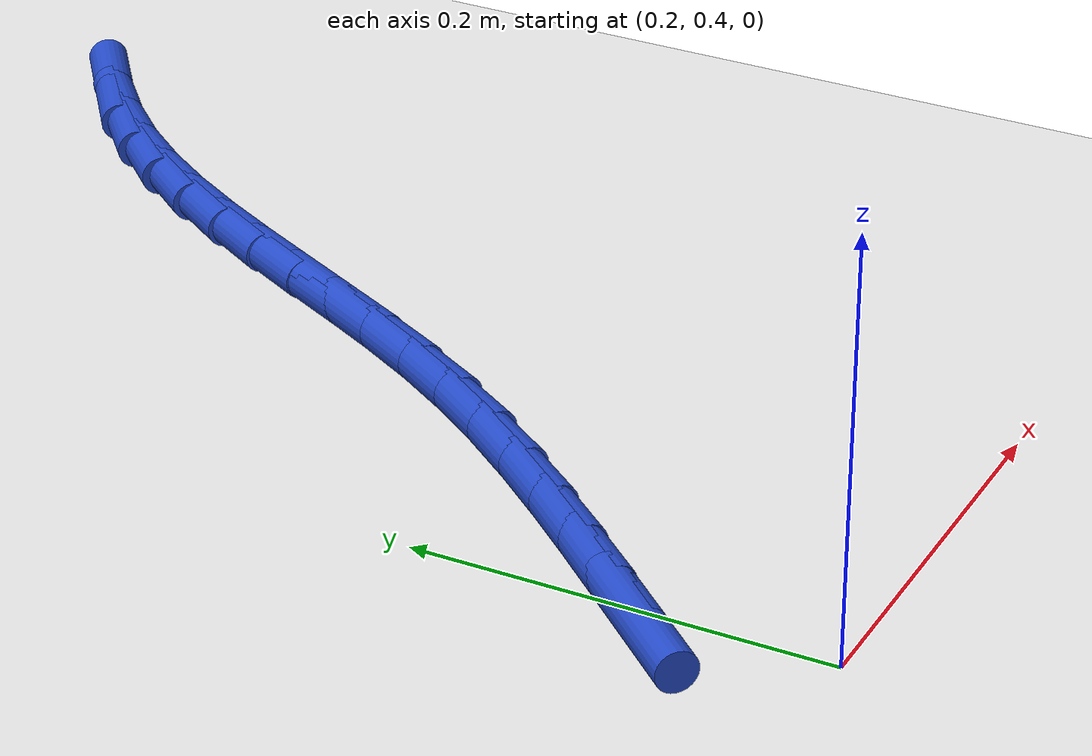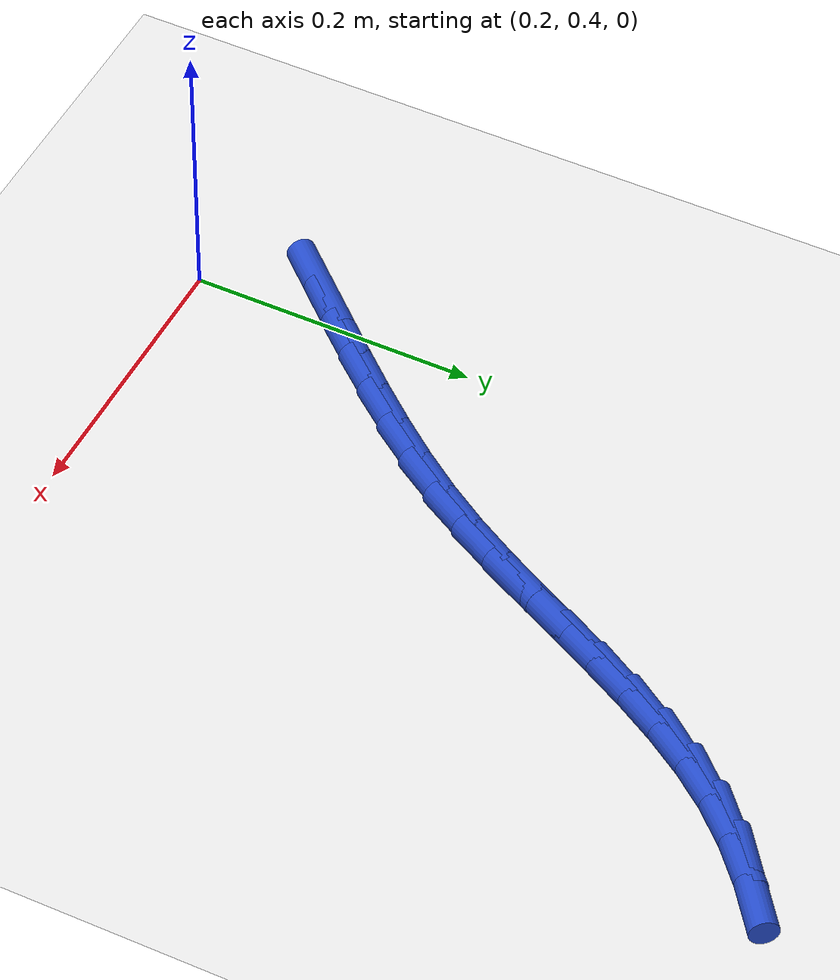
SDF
<sdf version="1.6">
 <world name="default">
  <model name="ground_plane">
   <static>1</static>
   <link name="link">
    <collision name="collision">
     <geometry><plane><normal>0 0 1</normal><size>100 100</size></plane></geometry>
     <surface><friction><ode><mu>100</mu><mu2>50</mu2></ode></friction></surface>
    </collision>
    <visual name="visual">
     <cast_shadows>0</cast_shadows>
     <geometry><plane><normal>0 0 1</normal><size>100 100</size></plane></geometry>
     <material>
      <script><uri>file://media/materials/scripts/gazebo.material</uri><name>Gazebo/WhiteGlow</name></script>
     </material>
    </visual>
   </link>
  </model>
  <model name="line">
   <link name="link_16">
    <pose>0.17970688324139752 0.48122997180145005 0.01 0 1.57 0.8312212553598523</pose>
    <collision name="collision">
     <geometry><cylinder><radius>0.01</radius><length>0.08</length></cylinder></geometry>
    </collision>
    <visual name="visual">
     <material>
      <script><name>Gazebo/Blue</name><uri>file://media/materials/scripts/gazebo.material</uri></script>
     </material>
     <geometry><cylinder><radius>0.01</radius><length>0.08</length></cylinder></geometry>
    </visual>
   </link>
   <link name="link_17">
    <pose>0.20251657953057575 0.5062320878966257 0.01 0 1.57 0.834774500175812</pose>
    <collision name="collision">
     <geometry><cylinder><radius>0.01</radius><length>0.08</length></cylinder></geometry>
    </collision>
    <visual name="visual">
     <material>
      <script><name>Gazebo/Blue</name><uri>file://media/materials/scripts/gazebo.material</uri></script>
     </material>
     <geometry><cylinder><radius>0.01</radius><length>0.08</length></cylinder></geometry>
    </visual>
   </link>
   <link name="link_18">
    <pose>0.22530712756256438 0.5313921893335383 0.01 0 1.57 0.8483874977379311</pose>
    <collision name="collision">
     <geometry><cylinder><radius>0.01</radius><length>0.08</length></cylinder></geometry>
    </collision>
    <visual name="visual">
     <material>
      <script><name>Gazebo/Blue</name><uri>file://media/materials/scripts/gazebo.material</uri></script>
     </material>
     <geometry><cylinder><radius>0.01</radius><length>0.08</length></cylinder></geometry>
    </visual>
   </link>
   <link name="link_19">
    <pose>0.24777575458041012 0.5568859362993587 0.01 0 1.57 0.8721056354768278</pose>
    <collision name="collision">
     <geometry><cylinder><radius>0.01</radius><length>0.08</length></cylinder></geometry>
    </collision>
    <visual name="visual">
     <material>
      <script><name>Gazebo/Blue</name><uri>file://media/materials/scripts/gazebo.material</uri></script>
     </material>
     <geometry><cylinder><radius>0.01</radius><length>0.08</length></cylinder></geometry>
    </visual>
   </link>
   <link name="link_20">
    <pose>0.2696196878271593 0.582888988981258 0.01 0 1.57 0.9060489771773454</pose>
    <collision name="collision">
     <geometry><cylinder><radius>0.01</radius><length>0.08</length></cylinder></geometry>
    </collision>
    <visual name="visual">
     <material>
      <script><name>Gazebo/Blue</name><uri>file://media/materials/scripts/gazebo.material</uri></script>
     </material>
     <geometry><cylinder><radius>0.01</radius><length>0.08</length></cylinder></geometry>
    </visual>
   </link>
   <link name="link_21">
    <pose>0.29053615454585835 0.6095770075664071 0.01 0 1.57 0.9503395818592171</pose>
    <collision name="collision">
     <geometry><cylinder><radius>0.01</radius><length>0.08</length></cylinder></geometry>
    </collision>
    <visual name="visual">
     <material>
      <script><name>Gazebo/Blue</name><uri>file://media/materials/scripts/gazebo.material</uri></script>
     </material>
     <geometry><cylinder><radius>0.01</radius><length>0.08</length></cylinder></geometry>
    </visual>
   </link>
   <link name="link_22">
    <pose>0.3102223819795541 0.6371256522419773 0.01 0 1.57 1.004442072257231</pose>
    <collision name="collision">
     <geometry><cylinder><radius>0.01</radius><length>0.08</length></cylinder></geometry>
    </collision>
    <visual name="visual">
     <material>
      <script><name>Gazebo/Blue</name><uri>file://media/materials/scripts/gazebo.material</uri></script>
     </material>
     <geometry><cylinder><radius>0.01</radius><length>0.08</length></cylinder></geometry>
    </visual>
   </link>
   <link name="link_23">
    <pose>0.3283908379875737 0.6656997322464746 0.01 0 1.57 1.0549218515984744</pose>
    <collision name="collision">
     <geometry><cylinder><radius>0.01</radius><length>0.08</length></cylinder></geometry>
    </collision>
    <visual name="visual">
     <material>
      <script><name>Gazebo/Blue</name><uri>file://media/materials/scripts/gazebo.material</uri></script>
     </material>
     <geometry><cylinder><radius>0.01</radius><length>0.08</length></cylinder></geometry>
    </visual>
   </link>
   <link name="link_24">
    <pose>0.34512164507003096 0.6952022956428747 0.01 0 1.57 1.088226265606407</pose>
    <collision name="collision">
     <geometry><cylinder><radius>0.01</radius><length>0.08</length></cylinder></geometry>
    </collision>
    <visual name="visual">
     <material>
      <script><name>Gazebo/Blue</name><uri>file://media/materials/scripts/gazebo.material</uri></script>
     </material>
     <geometry><cylinder><radius>0.01</radius><length>0.08</length></cylinder></geometry>
    </visual>
   </link>
   <link name="link_25">
    <pose>0.3608723510250425 0.7252676728479699 0.01 0 1.57 1.103974739045045</pose>
    <collision name="collision">
     <geometry><cylinder><radius>0.01</radius><length>0.08</length></cylinder></geometry>
    </collision>
    <visual name="visual">
     <material>
      <script><name>Gazebo/Blue</name><uri>file://media/materials/scripts/gazebo.material</uri></script>
     </material>
     <geometry><cylinder><radius>0.01</radius><length>0.08</length></cylinder></geometry>
    </visual>
   </link>
   <link name="link_26">
    <pose>0.37611769881988083 0.755517951735708 0.01 0 1.57 1.1022078265134752</pose>
    <collision name="collision">
     <geometry><cylinder><radius>0.01</radius><length>0.08</length></cylinder></geometry>
    </collision>
    <visual name="visual">
     <material>
      <script><name>Gazebo/Blue</name><uri>file://media/materials/scripts/gazebo.material</uri></script>
     </material>
     <geometry><cylinder><radius>0.01</radius><length>0.08</length></cylinder></geometry>
    </visual>
   </link>
   <link name="link_27">
    <pose>0.39133243142181834 0.7855752201800373 0.01 0 1.57 1.0826147590760773</pose>
    <collision name="collision">
     <geometry><cylinder><radius>0.01</radius><length>0.08</length></cylinder></geometry>
    </collision>
    <visual name="visual">
     <material>
      <script><name>Gazebo/Blue</name><uri>file://media/materials/scripts/gazebo.material</uri></script>
     </material>
     <geometry><cylinder><radius>0.01</radius><length>0.08</length></cylinder></geometry>
    </visual>
   </link>
   <link name="link_28">
    <pose>0.4069912917981277 0.8150615660549061 0.01 0 1.57 1.044531724250901</pose>
    <collision name="collision">
     <geometry><cylinder><radius>0.01</radius><length>0.08</length></cylinder></geometry>
    </collision>
    <visual name="visual">
     <material>
      <script><name>Gazebo/Blue</name><uri>file://media/materials/scripts/gazebo.material</uri></script>
     </material>
     <geometry><cylinder><radius>0.01</radius><length>0.08</length></cylinder></geometry>
    </visual>
   </link>
   <link name="link_29">
    <pose>0.4235690229160811 0.843599077234262 0.01 0 1.57 0.9871100418344582</pose>
    <collision name="collision">
     <geometry><cylinder><radius>0.01</radius><length>0.08</length></cylinder></geometry>
    </collision>
    <visual name="visual">
     <material>
      <script><name>Gazebo/Blue</name><uri>file://media/materials/scripts/gazebo.material</uri></script>
     </material>
     <geometry><cylinder><radius>0.01</radius><length>0.08</length></cylinder></geometry>
    </visual>
   </link>
   <link name="link_30">
    <pose>0.4415403677429517 0.8708098415920539 0.01 0 1.57 0.9097135967163266</pose>
    <collision name="collision">
     <geometry><cylinder><radius>0.01</radius><length>0.08</length></cylinder></geometry>
    </collision>
    <visual name="visual">
     <material>
      <script><name>Gazebo/Blue</name><uri>file://media/materials/scripts/gazebo.material</uri></script>
     </material>
     <geometry><cylinder><radius>0.01</radius><length>0.08</length></cylinder></geometry>
    </visual>
   </link>
   <link name="link_31">
    <pose>0.46138006924601116 0.8963159470022288 0.01 0 1.57 0.8147684112072956</pose>
    <collision name="collision">
     <geometry><cylinder><radius>0.01</radius><length>0.08</length></cylinder></geometry>
    </collision>
    <visual name="visual">
     <material>
      <script><name>Gazebo/Blue</name><uri>file://media/materials/scripts/gazebo.material</uri></script>
     </material>
     <geometry><cylinder><radius>0.01</radius><length>0.08</length></cylinder></geometry>
    </visual>
   </link>
   <link name="link_32">
    <pose>0.48350801046168673 0.9197834220813806 0.01 0 1.57 0.7229272235167186</pose>
    <collision name="collision">
     <geometry><cylinder><radius>0.01</radius><length>0.08</length></cylinder></geometry>
    </collision>
    <visual name="visual">
     <material>
      <script><name>Gazebo/Blue</name><uri>file://media/materials/scripts/gazebo.material</uri></script>
     </material>
     <geometry><cylinder><radius>0.01</radius><length>0.08</length></cylinder></geometry>
    </visual>
   </link>
   <link name="link_33">
    <pose>0.5078586970794982 0.9412670644576057 0.01 0 1.57 0.645120619608636</pose>
    <collision name="collision">
     <geometry><cylinder><radius>0.01</radius><length>0.08</length></cylinder></geometry>
    </collision>
    <visual name="visual">
     <material>
      <script><name>Gazebo/Blue</name><uri>file://media/materials/scripts/gazebo.material</uri></script>
     </material>
     <geometry><cylinder><radius>0.01</radius><length>0.08</length></cylinder></geometry>
    </visual>
   </link>
  </model>
 </world>
</sdf>
